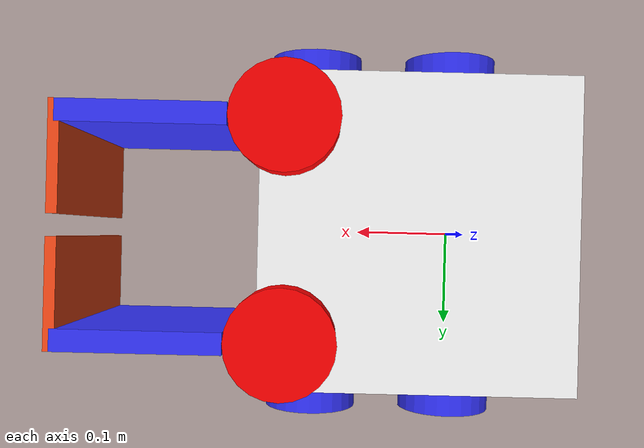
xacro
<?xml version="1.0"?>
<robot xmlns:xacro="http://www.ros.org/wiki/xacro" >

    <xacro:include filename="inertial_macros.xacro" />
    <material name="white">
        <color rgba="1 1 1 1" />
    </material>

    <material name="orange">
        <color rgba="1 0.3 0.1 1"/>
    </material>

    <material name="blue">
        <color rgba="0.2 0.2 1 1"/>
    </material>

    <material name="black">
        <color rgba="0 0 0 1"/>
    </material>

    <material name="red">
        <color rgba="1 0 0 1"/>
    </material>

    <!-- BASE LINK -->

    <link name="base_link">

    </link>
    <joint name="base_footprint_joint" type="fixed">
        <parent link="base_link"/>
        <child link="base_footprint"/>
        <origin xyz="0 0 0" rpy="0 0 0"/>
    </joint>

    <link name="base_footprint">
    </link>

    <joint name="chassis_joint" type="fixed">
        <parent link="base_link"/>
        <child link="chassis"/>
    <origin xyz="-0.1 0 0"/>
    </joint>

    <link name="chassis">
        <visual>
            <origin xyz="0.15 0 0.075" rpy="0 0 0"/>
            <geometry>
                <box size="0.3 0.3 0.15"/>
            </geometry>
            <material name="white"/>
        </visual>
        <collision>
            <origin xyz="0.15 0 0.075" rpy="0 0 0"/>
            <geometry>
                <box size="0.3 0.3 0.15"/>
        </geometry>
        </collision>
        <xacro:inertial_box mass="0.5" x="0.3" y="0.3" z="0.15">
            <origin xyz="0.15 0 0.075" rpy="0 0 0"/>
        </xacro:inertial_box>
    </link>
    <gazebo reference="chassis">
        <material>Gazebo/White</material>
    </gazebo>

    <!-- LEFT WHEEL -->

    <joint name="left_wheel_joint" type="continuous">
        <parent link="base_link"/>
        <child link="left_wheel"/>
        <origin xyz="0 0.175 0" rpy="-${pi/2} 0 0"/>
        <axis xyz="0 0 1"/>
    </joint>
    <link name="left_wheel">
        <visual>
            <geometry>
                <cylinder length="0.04" radius="0.05" />
            </geometry>
            <material name="blue"/>
        </visual>
        <collision>
            <geometry>
                <cylinder length="0.04" radius="0.05" />
            </geometry>
        </collision>
        <xacro:inertial_cylinder mass="0.1" length="0.04" radius="0.05">
            <origin xyz="0 0 0" rpy="0 0 0"/>
        </xacro:inertial_cylinder>
    </link>
    <gazebo reference="left_wheel">
        <material>Gazebo/Blue</material>
    </gazebo>

    <!-- LEFT WHEEL -->
    <!-- LEFT WHEEL2 -->
    <joint name="left_wheel_joint2" type="fixed">
        <parent link="base_link"/>
        <child link="left_wheel2"/>
        <origin xyz="0.15 0.175 0" rpy="-${pi/2} 0 0"/>
        <axis xyz="0 0 1"/>
    </joint>
    <link name="left_wheel2">
        <visual>
            <geometry>
                <cylinder length="0.04" radius="0.05" />
            </geometry>
            <material name="blue"/>
        </visual>
    </link>
    <gazebo reference="left_wheel2">
        <material>Gazebo/Blue</material>
    </gazebo>

    <!-- LEFT WHEEL2 -->

    <!-- RIGHT WHEEL -->

    <joint name="right_wheel_joint" type="continuous">
        <parent link="base_link"/>
        <child link="right_wheel"/>
        <origin xyz="0 -0.175 0" rpy="${pi/2} 0 0"/>
        <axis xyz="0 0 -1"/>
    </joint>

    <link name="right_wheel">
        <visual>
            <geometry>
                <cylinder length="0.04" radius="0.05" />
            </geometry>
            <material name="blue"/>
        </visual>
        <collision>
            <geometry>
                <cylinder length="0.04" radius="0.05" />
            </geometry>
        </collision>
        <xacro:inertial_sphere mass="0.1" radius="0.05">
            <origin xyz="0 0 0" rpy="0 0 0"/>
        </xacro:inertial_sphere>
    </link>
    <gazebo reference="right_wheel">
        <material>Gazebo/Blue</material>
    </gazebo>
    <!-- RIGHT WHEEL -->
    <!-- RIGHT WHEEL2 -->
    <joint name="right_wheel_joint2" type="fixed">
        <parent link="base_link"/>
        <child link="right_wheel2"/>
        <origin xyz="0.15 -0.175 0" rpy="${pi/2} 0 0"/>
        <axis xyz="0 0 -1"/>
    </joint>

    <link name="right_wheel2">
        <visual>
            <geometry>
                <cylinder length="0.04" radius="0.05" />
            </geometry>
            <material name="blue"/>
        </visual>
    </link>
    <gazebo reference="right_wheel2">
        <material>Gazebo/Blue</material>
    </gazebo>

    <!-- RIGHT WHEEL2 -->

    <!-- CASTER WHEEL -->

    <joint name="caster_wheel_joint" type="fixed">
        <parent link="chassis"/>
        <child link="caster_wheel"/>
        <origin xyz="0.24 0 0" rpy="0 0 0"/>
    </joint>

    <link name="caster_wheel">
        <visual>
            <geometry>
                <sphere radius="0.05" />
            </geometry>
            <material name="black"/>
        </visual>
        <collision>
            <geometry>
                <sphere radius="0.05" />
            </geometry>
        </collision>
        <xacro:inertial_sphere mass="0.1" radius="0.05">
            <origin xyz="0 0 0" rpy="0 0 0"/>
        </xacro:inertial_sphere>
    </link>
    <gazebo reference="caster_wheel">
        <material>Gazebo/Black</material>
        <mu1 value="0.001"/>
        <mu2 value="0.001"/>
    </gazebo>

    <!--  WHEEL -->

    <joint name="wheel_joint" type="fixed">
        <parent link="base_link"/>
        <child link="wheel"/>
        <origin xyz="0.175 -0.1 0.175" rpy="0 0 0"/>
        <axis xyz="0 0 0"/>
    </joint>

    <link name="wheel">
        <visual>
            <geometry>
                <cylinder length="0.04" radius="0.05" />
            </geometry>
            <material name="red"/>
        </visual>
        <collision>
            <geometry>
                <cylinder length="0.04" radius="0.05" />
            </geometry>
        </collision>
        <xacro:inertial_sphere mass="0.1" radius="0.05">
            <origin xyz="0 0 0" rpy="0 0 0"/>
        </xacro:inertial_sphere>
    </link>
    <gazebo reference="wheel">
        <material>Gazebo/Red</material>
    </gazebo>

    <!--  แขน -->

    <joint name="arm_joint" type="revolute">
        <parent link="wheel"/>
        <child link="arm1"/>
        <axis xyz="0 0 1"/>
        <origin xyz="0 0 -0.08"/>

        <limit lower="-1" upper="0" velocity="100" effort="100"/>
    </joint>

    <link name="arm1">
        <visual>
            <origin xyz="0.125 0 0" rpy="0 0 0"/>
            <geometry>
                <box size="0.15 0.02 0.2"/>
            </geometry>
            <material name="blue"/>
        </visual>
        <xacro:inertial_sphere mass="0.1" radius="0.05">
            <origin xyz="0 0 0" rpy="0 0 0"/>
        </xacro:inertial_sphere>
    </link>
    <gazebo reference="arm1">
        <material>Gazebo/Blue</material>
    </gazebo>

    <!--  wheel2 -->

    <joint name="wheel_joint2" type="fixed">
        <parent link="base_link"/>
        <child link="wheel2"/>
        <origin xyz="0.175 0.1 0.175" rpy="0 0 0"/>
        <axis xyz="0 0 0"/>
    </joint>

    <link name="wheel2">
        <visual>
            <geometry>
                <cylinder length="0.04" radius="0.05" />
            </geometry>
            <material name="red"/>
        </visual>
        <collision>
            <geometry>
                <cylinder length="0.04" radius="0.05" />
            </geometry>
        </collision>
        <xacro:inertial_sphere mass="0.1" radius="0.05">
            <origin xyz="0 0 0" rpy="0 0 0"/>
        </xacro:inertial_sphere>
    </link>
    <gazebo reference="wheel2">
        <material>Gazebo/Red</material>
    </gazebo>

    <!--  แขน2 -->

    <joint name="arm_joint2" type="revolute">
        <parent link="wheel2"/>
        <child link="arm2"/>
        <axis xyz="0 0 1"/>
        <origin xyz="0 0 -0.08"/>

        <limit lower="1" upper="0" velocity="100" effort="100"/>
    </joint>

    <link name="arm2">
        <visual>
            <origin xyz="0.125 0 0" rpy="0 0 0"/>
            <geometry>
                <box size="0.15 0.02 0.2"/>
            </geometry>
            <material name="blue"/>
        </visual>
        <xacro:inertial_sphere mass="0.1" radius="0.05">
            <origin xyz="0 0 0" rpy="0 0 0"/>
        </xacro:inertial_sphere>
    </link>
    <gazebo reference="arm2">
        <material>Gazebo/Blue</material>
    </gazebo>

    <!--  partแขน1 -->

    <joint name="part_arm_joint" type="fixed">
        <parent link="arm1"/>
        <child link="part_arm"/>
        <axis xyz="0 0 1"/>
        <origin xyz="0.075 0.04 0"/>

        <limit lower="-1" upper="0" velocity="100" effort="100"/>
    </joint>

    <link name="part_arm">
        <visual>
            <origin xyz="0.125 0 0" rpy="0 0 0"/>
            <geometry>
                <box size="0.01 0.1 0.2"/>
            </geometry>
            <material name="orange"/>
        </visual>
    </link>
    <gazebo reference="part_arm">
        <material>Gazebo/Blue</material>
    </gazebo>

    <!--  partแขน1 -->

    <joint name="part_arm_joint2" type="fixed">
        <parent link="arm2"/>
        <child link="part_arm2"/>
        <axis xyz="0 0 1"/>
        <origin xyz="0.075 -0.04 0"/>

        <limit lower="-1" upper="0" velocity="100" effort="100"/>
    </joint>

    <link name="part_arm2">
        <visual>
            <origin xyz="0.125 0 0" rpy="0 0 0"/>
            <geometry>
                <box size="0.01 0.1 0.2"/>
            </geometry>
            <material name="orange"/>
        </visual>
    </link>
    <gazebo reference="part_arm2">
        <material>Gazebo/Blue</material>
    </gazebo>

</robot>
